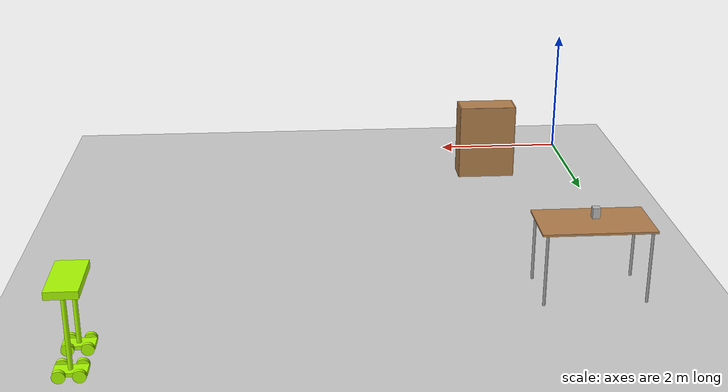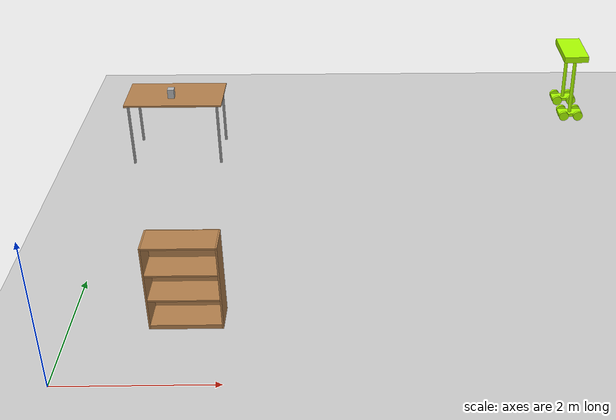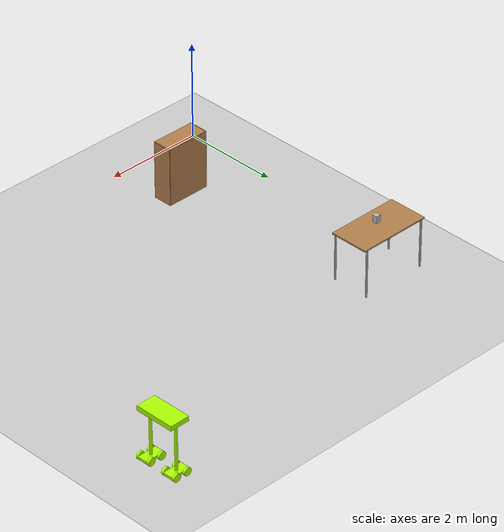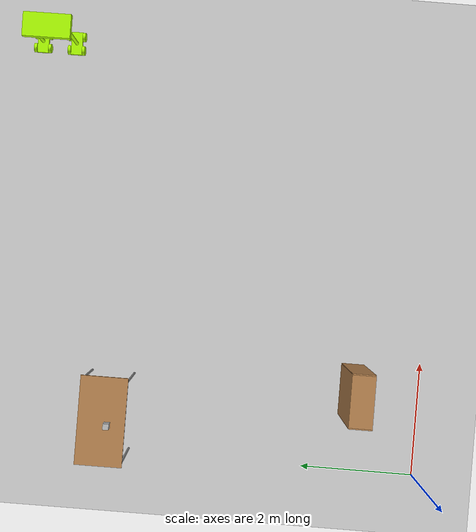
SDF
<sdf version="1.6">
 <world name="default">
  <model name="ground_plane">
   <static>1</static>
   <link name="link">
    <collision name="collision">
     <geometry><plane><normal>0 0 1</normal><size>100 100</size></plane></geometry>
     <surface><friction><ode><mu>100</mu><mu2>50</mu2></ode></friction></surface>
    </collision>
    <visual name="visual">
     <cast_shadows>0</cast_shadows>
     <geometry><plane><normal>0 0 1</normal><size>100 100</size></plane></geometry>
     <material>
      <script><uri>file://media/materials/scripts/gazebo.material</uri><name>Gazebo/Grey</name></script>
     </material>
    </visual>
   </link>
  </model>
  <model name="table_0">
   <static>1</static>
   <link name="link">
    <collision name="surface">
     <pose>0 0 1 0 -0 0</pose>
     <geometry><box><size>1.5 0.8 0.03</size></box></geometry>
     <surface><friction><ode><mu>0.6</mu><mu2>0.6</mu2></ode></friction></surface>
    </collision>
    <visual name="visual1">
     <pose>0 0 1 0 -0 0</pose>
     <geometry><box><size>1.5 0.8 0.03</size></box></geometry>
     <material>
      <script><uri>file://media/materials/scripts/gazebo.material</uri><name>Gazebo/Wood</name></script>
     </material>
    </visual>
    <collision name="front_left_leg">
     <pose>0.68 0.38 0.5 0 -0 0</pose>
     <geometry><cylinder><radius>0.02</radius><length>1</length></cylinder></geometry>
    </collision>
    <visual name="front_left_leg">
     <pose>0.68 0.38 0.5 0 -0 0</pose>
     <geometry><cylinder><radius>0.02</radius><length>1</length></cylinder></geometry>
     <material>
      <script><uri>file://media/materials/scripts/gazebo.material</uri><name>Gazebo/Grey</name></script>
     </material>
    </visual>
    <collision name="front_right_leg">
     <pose>0.68 -0.38 0.5 0 -0 0</pose>
     <geometry><cylinder><radius>0.02</radius><length>1</length></cylinder></geometry>
    </collision>
    <visual name="front_right_leg">
     <pose>0.68 -0.38 0.5 0 -0 0</pose>
     <geometry><cylinder><radius>0.02</radius><length>1</length></cylinder></geometry>
     <material>
      <script><uri>file://media/materials/scripts/gazebo.material</uri><name>Gazebo/Grey</name></script>
     </material>
    </visual>
    <collision name="back_right_leg">
     <pose>-0.68 -0.38 0.5 0 -0 0</pose>
     <geometry><cylinder><radius>0.02</radius><length>1</length></cylinder></geometry>
    </collision>
    <visual name="back_right_leg">
     <pose>-0.68 -0.38 0.5 0 -0 0</pose>
     <geometry><cylinder><radius>0.02</radius><length>1</length></cylinder></geometry>
     <material>
      <script><uri>file://media/materials/scripts/gazebo.material</uri><name>Gazebo/Grey</name></script>
     </material>
    </visual>
    <collision name="back_left_leg">
     <pose>-0.68 0.38 0.5 0 -0 0</pose>
     <geometry><cylinder><radius>0.02</radius><length>1</length></cylinder></geometry>
    </collision>
    <visual name="back_left_leg">
     <pose>-0.68 0.38 0.5 0 -0 0</pose>
     <geometry><cylinder><radius>0.02</radius><length>1</length></cylinder></geometry>
     <material>
      <script><uri>file://media/materials/scripts/gazebo.material</uri><name>Gazebo/Grey</name></script>
     </material>
    </visual>
   </link>
   <pose>0.75 5.5 0 0 -0 0</pose>
  </model>
  <model name="bookshelf_0">
   <static>1</static>
   <link name="link">
    <inertial><mass>1</mass></inertial>
    <collision name="back">
     <pose>0 0.005 0.6 0 -0 0</pose>
     <geometry><box><size>0.9 0.01 1.2</size></box></geometry>
    </collision>
    <visual name="visual1">
     <pose>0 0.005 0.6 0 -0 0</pose>
     <geometry><box><size>0.9 0.01 1.2</size></box></geometry>
     <material>
      <script><uri>file://media/materials/scripts/gazebo.material</uri><name>Gazebo/Wood</name></script>
     </material>
    </visual>
    <collision name="left_side">
     <pose>0.45 -0.195 0.6 0 -0 0</pose>
     <geometry><box><size>0.02 0.4 1.2</size></box></geometry>
    </collision>
    <visual name="visual2">
     <pose>0.45 -0.195 0.6 0 -0 0</pose>
     <geometry><box><size>0.02 0.4 1.2</size></box></geometry>
     <material>
      <script><uri>file://media/materials/scripts/gazebo.material</uri><name>Gazebo/Wood</name></script>
     </material>
    </visual>
    <collision name="right_side">
     <pose>-0.45 -0.195 0.6 0 -0 0</pose>
     <geometry><box><size>0.02 0.4 1.2</size></box></geometry>
    </collision>
    <visual name="visual3">
     <pose>-0.45 -0.195 0.6 0 -0 0</pose>
     <geometry><box><size>0.02 0.4 1.2</size></box></geometry>
     <material>
      <script><uri>file://media/materials/scripts/gazebo.material</uri><name>Gazebo/Wood</name></script>
     </material>
    </visual>
    <collision name="bottom">
     <pose>0 -0.195 0.03 0 -0 0</pose>
     <geometry><box><size>0.88 0.4 0.06</size></box></geometry>
    </collision>
    <visual name="visual4">
     <pose>0 -0.195 0.03 0 -0 0</pose>
     <geometry><box><size>0.88 0.4 0.06</size></box></geometry>
     <material>
      <script><uri>file://media/materials/scripts/gazebo.material</uri><name>Gazebo/Wood</name></script>
     </material>
    </visual>
    <collision name="top">
     <pose>0 -0.195 1.19 0 -0 0</pose>
     <geometry><box><size>0.88 0.4 0.02</size></box></geometry>
    </collision>
    <visual name="visual5">
     <pose>0 -0.195 1.19 0 -0 0</pose>
     <geometry><box><size>0.88 0.4 0.02</size></box></geometry>
     <material>
      <script><uri>file://media/materials/scripts/gazebo.material</uri><name>Gazebo/Wood</name></script>
     </material>
    </visual>
    <collision name="low_shelf">
     <pose>0 -0.195 0.43 0 -0 0</pose>
     <geometry><box><size>0.88 0.4 0.02</size></box></geometry>
    </collision>
    <visual name="visual6">
     <pose>0 -0.195 0.43 0 -0 0</pose>
     <geometry><box><size>0.88 0.4 0.02</size></box></geometry>
     <material>
      <script><uri>file://media/materials/scripts/gazebo.material</uri><name>Gazebo/Wood</name></script>
     </material>
    </visual>
    <collision name="high_shelf">
     <pose>0 -0.195 0.8 0 -0 0</pose>
     <geometry><box><size>0.88 0.4 0.02</size></box></geometry>
    </collision>
    <visual name="visual7">
     <pose>0 -0.195 0.8 0 -0 0</pose>
     <geometry><box><size>0.88 0.4 0.02</size></box></geometry>
     <material>
      <script><uri>file://media/materials/scripts/gazebo.material</uri><name>Gazebo/Wood</name></script>
     </material>
    </visual>
   </link>
   <pose>1.45 1.4 0 0 -0 0</pose>
  </model>
  <model name="tea_box">
   <link name="link">
    <pose>0 0 0.075 0 -0 0</pose>
    <visual name="visual">
     <geometry><box><size>0.1 0.1 0.15</size></box></geometry>
     <material>
      <script>
       <uri>file://model/3DGEMS/kitchen/tea_box/materials/scripts</uri>
       <uri>file://model/3DGEMS/kitchen/tea_box/materials/textures</uri>
       <name>tea_pat</name>
      </script>
     </material>
    </visual>
    <collision name="collision"><geometry><box><size>0.1 0.1 0.15</size></box></geometry></collision>
   </link>
   <static>1</static>
   <pose>0.7 5.4 1.01 0 -0 0</pose>
  </model>
  <model name="myRobot_1">
   <link name="link_0">
    <pose>0 -0.3 -0.151923 0 -0 0</pose>
    <inertial>
     <mass>1</mass>
     <inertia>
      <ixx>0.166667</ixx>
      <ixy>0</ixy>
      <ixz>0</ixz>
      <iyy>0.166667</iyy>
      <iyz>0</iyz>
      <izz>0.166667</izz>
     </inertia>
    </inertial>
    <visual name="visual">
     <geometry><box><size>0.4 0.2 0.05</size></box></geometry>
     <material>
      <lighting>1</lighting>
      <script><uri>file://media/materials/scripts/gazebo.material</uri><name>Gazebo/Grey</name></script>
      <ambient>0.675 1 0 1</ambient>
      <diffuse>0.675 1 0 1</diffuse>
      <specular>0.01 0.01 0.01 1</specular>
      <emissive>0 0 0 1</emissive>
      <shader type="vertex"><normal_map>__default__</normal_map></shader>
     </material>
    </visual>
    <collision name="collision">
     <geometry><box><size>0.4 0.2 0.05</size></box></geometry>
     <surface>
      <friction>
       <ode><mu>1</mu><mu2>1</mu2><fdir1>0 0 0</fdir1><slip1>0</slip1><slip2>0</slip2></ode>
       <torsional>
        <coefficient>1</coefficient>
        <patch_radius>0</patch_radius>
        <surface_radius>0</surface_radius>
        <use_patch_radius>1</use_patch_radius>
        <ode><slip>0</slip></ode>
       </torsional>
      </friction>
      <bounce><restitution_coefficient>0</restitution_coefficient><threshold>1e+06</threshold></bounce>
      <contact>
       <collide_without_contact>0</collide_without_contact>
       <collide_without_contact_bitmask>1</collide_without_contact_bitmask>
       <collide_bitmask>1</collide_bitmask>
       <ode>
        <soft_cfm>0</soft_cfm>
        <soft_erp>0.2</soft_erp>
        <kp>1e+13</kp>
        <kd>1</kd>
        <max_vel>0.01</max_vel>
        <min_depth>0</min_depth>
       </ode>
       <bullet>
        <split_impulse>1</split_impulse>
        <split_impulse_penetration_threshold>-0.01</split_impulse_penetration_threshold>
        <soft_cfm>0</soft_cfm>
        <soft_erp>0.2</soft_erp>
        <kp>1e+13</kp>
        <kd>1</kd>
       </bullet>
      </contact>
     </surface>
    </collision>
   </link>
   <link name="link_0_clone">
    <pose>0 0.3 -0.151923 0 -0 0</pose>
    <inertial>
     <mass>1</mass>
     <inertia>
      <ixx>0.166667</ixx>
      <ixy>0</ixy>
      <ixz>0</ixz>
      <iyy>0.166667</iyy>
      <iyz>0</iyz>
      <izz>0.166667</izz>
     </inertia>
    </inertial>
    <visual name="visual">
     <geometry><box><size>0.4 0.2 0.05</size></box></geometry>
     <material>
      <lighting>1</lighting>
      <script><uri>file://media/materials/scripts/gazebo.material</uri><name>Gazebo/Grey</name></script>
      <ambient>0.675 1 0 1</ambient>
      <diffuse>0.675 1 0 1</diffuse>
      <specular>0.01 0.01 0.01 1</specular>
      <emissive>0 0 0 1</emissive>
      <shader type="vertex"><normal_map>__default__</normal_map></shader>
     </material>
    </visual>
    <collision name="collision">
     <geometry><box><size>0.4 0.2 0.05</size></box></geometry>
     <surface>
      <friction>
       <ode><mu>1</mu><mu2>1</mu2><fdir1>0 0 0</fdir1><slip1>0</slip1><slip2>0</slip2></ode>
       <torsional>
        <coefficient>1</coefficient>
        <patch_radius>0</patch_radius>
        <surface_radius>0</surface_radius>
        <use_patch_radius>1</use_patch_radius>
        <ode><slip>0</slip></ode>
       </torsional>
      </friction>
      <bounce><restitution_coefficient>0</restitution_coefficient><threshold>1e+06</threshold></bounce>
      <contact>
       <collide_without_contact>0</collide_without_contact>
       <collide_without_contact_bitmask>1</collide_without_contact_bitmask>
       <collide_bitmask>1</collide_bitmask>
       <ode>
        <soft_cfm>0</soft_cfm>
        <soft_erp>0.2</soft_erp>
        <kp>1e+13</kp>
        <kd>1</kd>
        <max_vel>0.01</max_vel>
        <min_depth>0</min_depth>
       </ode>
       <bullet>
        <split_impulse>1</split_impulse>
        <split_impulse_penetration_threshold>-0.01</split_impulse_penetration_threshold>
        <soft_cfm>0</soft_cfm>
        <soft_erp>0.2</soft_erp>
        <kp>1e+13</kp>
        <kd>1</kd>
       </bullet>
      </contact>
     </surface>
    </collision>
   </link>
   <link name="link_1">
    <pose>0 -0.3 0.323077 0 -0 0</pose>
    <inertial>
     <mass>1</mass>
     <inertia><ixx>0.145833</ixx><ixy>0</ixy><ixz>0</ixz><iyy>0.145833</iyy><iyz>0</iyz><izz>0.125</izz></inertia>
    </inertial>
    <visual name="visual">
     <geometry><cylinder><radius>0.03</radius><length>1</length></cylinder></geometry>
     <material>
      <lighting>1</lighting>
      <script><uri>file://media/materials/scripts/gazebo.material</uri><name>Gazebo/Grey</name></script>
      <ambient>0.675 1 0 1</ambient>
      <diffuse>0.675 1 0 1</diffuse>
      <specular>0.01 0.01 0.01 1</specular>
      <emissive>0 0 0 1</emissive>
      <shader type="vertex"><normal_map>__default__</normal_map></shader>
     </material>
    </visual>
    <collision name="collision">
     <geometry><cylinder><radius>0.03</radius><length>1</length></cylinder></geometry>
     <surface>
      <friction>
       <ode><mu>1</mu><mu2>1</mu2><fdir1>0 0 0</fdir1><slip1>0</slip1><slip2>0</slip2></ode>
       <torsional>
        <coefficient>1</coefficient>
        <patch_radius>0</patch_radius>
        <surface_radius>0</surface_radius>
        <use_patch_radius>1</use_patch_radius>
        <ode><slip>0</slip></ode>
       </torsional>
      </friction>
      <bounce><restitution_coefficient>0</restitution_coefficient><threshold>1e+06</threshold></bounce>
      <contact>
       <collide_without_contact>0</collide_without_contact>
       <collide_without_contact_bitmask>1</collide_without_contact_bitmask>
       <collide_bitmask>1</collide_bitmask>
       <ode>
        <soft_cfm>0</soft_cfm>
        <soft_erp>0.2</soft_erp>
        <kp>1e+13</kp>
        <kd>1</kd>
        <max_vel>0.01</max_vel>
        <min_depth>0</min_depth>
       </ode>
       <bullet>
        <split_impulse>1</split_impulse>
        <split_impulse_penetration_threshold>-0.01</split_impulse_penetration_threshold>
        <soft_cfm>0</soft_cfm>
        <soft_erp>0.2</soft_erp>
        <kp>1e+13</kp>
        <kd>1</kd>
       </bullet>
      </contact>
     </surface>
    </collision>
   </link>
   <link name="link_1_clone">
    <pose>0 0.3 0.323077 0 -0 0</pose>
    <inertial>
     <mass>1</mass>
     <inertia><ixx>0.145833</ixx><ixy>0</ixy><ixz>0</ixz><iyy>0.145833</iyy><iyz>0</iyz><izz>0.125</izz></inertia>
    </inertial>
    <visual name="visual">
     <geometry><cylinder><radius>0.03</radius><length>1</length></cylinder></geometry>
     <material>
      <lighting>1</lighting>
      <script><uri>file://media/materials/scripts/gazebo.material</uri><name>Gazebo/Grey</name></script>
      <ambient>0.675 1 0 1</ambient>
      <diffuse>0.675 1 0 1</diffuse>
      <specular>0.01 0.01 0.01 1</specular>
      <emissive>0 0 0 1</emissive>
      <shader type="vertex"><normal_map>__default__</normal_map></shader>
     </material>
    </visual>
    <collision name="collision">
     <geometry><cylinder><radius>0.03</radius><length>1</length></cylinder></geometry>
     <surface>
      <friction>
       <ode><mu>1</mu><mu2>1</mu2><fdir1>0 0 0</fdir1><slip1>0</slip1><slip2>0</slip2></ode>
       <torsional>
        <coefficient>1</coefficient>
        <patch_radius>0</patch_radius>
        <surface_radius>0</surface_radius>
        <use_patch_radius>1</use_patch_radius>
        <ode><slip>0</slip></ode>
       </torsional>
      </friction>
      <bounce><restitution_coefficient>0</restitution_coefficient><threshold>1e+06</threshold></bounce>
      <contact>
       <collide_without_contact>0</collide_without_contact>
       <collide_without_contact_bitmask>1</collide_without_contact_bitmask>
       <collide_bitmask>1</collide_bitmask>
       <ode>
        <soft_cfm>0</soft_cfm>
        <soft_erp>0.2</soft_erp>
        <kp>1e+13</kp>
        <kd>1</kd>
        <max_vel>0.01</max_vel>
        <min_depth>0</min_depth>
       </ode>
       <bullet>
        <split_impulse>1</split_impulse>
        <split_impulse_penetration_threshold>-0.01</split_impulse_penetration_threshold>
        <soft_cfm>0</soft_cfm>
        <soft_erp>0.2</soft_erp>
        <kp>1e+13</kp>
        <kd>1</kd>
       </bullet>
      </contact>
     </surface>
    </collision>
   </link>
   <link name="link_2">
    <pose>0 -0 0.873077 0 -0 0</pose>
    <inertial>
     <mass>1</mass>
     <inertia>
      <ixx>0.166667</ixx>
      <ixy>0</ixy>
      <ixz>0</ixz>
      <iyy>0.166667</iyy>
      <iyz>0</iyz>
      <izz>0.166667</izz>
     </inertia>
    </inertial>
    <visual name="visual">
     <geometry><box><size>0.4 0.8 0.1</size></box></geometry>
     <material>
      <lighting>1</lighting>
      <script><uri>file://media/materials/scripts/gazebo.material</uri><name>Gazebo/Grey</name></script>
      <ambient>0.675 1 0 1</ambient>
      <diffuse>0.675 1 0 1</diffuse>
      <specular>0.01 0.01 0.01 1</specular>
      <emissive>0 0 0 1</emissive>
      <shader type="vertex"><normal_map>__default__</normal_map></shader>
     </material>
    </visual>
    <collision name="collision">
     <geometry><box><size>0.4 0.8 0.1</size></box></geometry>
     <surface>
      <friction>
       <ode><mu>1</mu><mu2>1</mu2><fdir1>0 0 0</fdir1><slip1>0</slip1><slip2>0</slip2></ode>
       <torsional>
        <coefficient>1</coefficient>
        <patch_radius>0</patch_radius>
        <surface_radius>0</surface_radius>
        <use_patch_radius>1</use_patch_radius>
        <ode><slip>0</slip></ode>
       </torsional>
      </friction>
      <bounce><restitution_coefficient>0</restitution_coefficient><threshold>1e+06</threshold></bounce>
      <contact>
       <collide_without_contact>0</collide_without_contact>
       <collide_without_contact_bitmask>1</collide_without_contact_bitmask>
       <collide_bitmask>1</collide_bitmask>
       <ode>
        <soft_cfm>0</soft_cfm>
        <soft_erp>0.2</soft_erp>
        <kp>1e+13</kp>
        <kd>1</kd>
        <max_vel>0.01</max_vel>
        <min_depth>0</min_depth>
       </ode>
       <bullet>
        <split_impulse>1</split_impulse>
        <split_impulse_penetration_threshold>-0.01</split_impulse_penetration_threshold>
        <soft_cfm>0</soft_cfm>
        <soft_erp>0.2</soft_erp>
        <kp>1e+13</kp>
        <kd>1</kd>
       </bullet>
      </contact>
     </surface>
    </collision>
   </link>
   <link name="link_3">
    <pose>-0.12 -0.425 -0.151923 1.5707 -0 0</pose>
    <inertial>
     <mass>1</mass>
     <inertia><ixx>0.145833</ixx><ixy>0</ixy><ixz>0</ixz><iyy>0.145833</iyy><iyz>0</iyz><izz>0.125</izz></inertia>
    </inertial>
    <visual name="visual">
     <geometry><cylinder><radius>0.08</radius><length>0.05</length></cylinder></geometry>
     <material>
      <lighting>1</lighting>
      <script><uri>file://media/materials/scripts/gazebo.material</uri><name>Gazebo/Grey</name></script>
      <ambient>0.675 1 0 1</ambient>
      <diffuse>0.675 1 0 1</diffuse>
      <specular>0.01 0.01 0.01 1</specular>
      <emissive>0 0 0 1</emissive>
      <shader type="vertex"><normal_map>__default__</normal_map></shader>
     </material>
    </visual>
    <collision name="collision">
     <geometry><cylinder><radius>0.08</radius><length>0.05</length></cylinder></geometry>
     <surface>
      <friction>
       <ode><mu>1</mu><mu2>1</mu2><fdir1>0 0 0</fdir1><slip1>0</slip1><slip2>0</slip2></ode>
       <torsional>
        <coefficient>1</coefficient>
        <patch_radius>0</patch_radius>
        <surface_radius>0</surface_radius>
        <use_patch_radius>1</use_patch_radius>
        <ode><slip>0</slip></ode>
       </torsional>
      </friction>
      <bounce><restitution_coefficient>0</restitution_coefficient><threshold>1e+06</threshold></bounce>
      <contact>
       <collide_without_contact>0</collide_without_contact>
       <collide_without_contact_bitmask>1</collide_without_contact_bitmask>
       <collide_bitmask>1</collide_bitmask>
       <ode>
        <soft_cfm>0</soft_cfm>
        <soft_erp>0.2</soft_erp>
        <kp>1e+13</kp>
        <kd>1</kd>
        <max_vel>0.01</max_vel>
        <min_depth>0</min_depth>
       </ode>
       <bullet>
        <split_impulse>1</split_impulse>
        <split_impulse_penetration_threshold>-0.01</split_impulse_penetration_threshold>
        <soft_cfm>0</soft_cfm>
        <soft_erp>0.2</soft_erp>
        <kp>1e+13</kp>
        <kd>1</kd>
       </bullet>
      </contact>
     </surface>
    </collision>
   </link>
   <link name="link_3_clone">
    <pose>0.12 -0.425 -0.151923 1.5707 -0 0</pose>
    <inertial>
     <mass>1</mass>
     <inertia><ixx>0.145833</ixx><ixy>0</ixy><ixz>0</ixz><iyy>0.145833</iyy><iyz>0</iyz><izz>0.125</izz></inertia>
    </inertial>
    <visual name="visual">
     <geometry><cylinder><radius>0.08</radius><length>0.05</length></cylinder></geometry>
     <material>
      <lighting>1</lighting>
      <script><uri>file://media/materials/scripts/gazebo.material</uri><name>Gazebo/Grey</name></script>
      <ambient>0.675 1 0 1</ambient>
      <diffuse>0.675 1 0 1</diffuse>
      <specular>0.01 0.01 0.01 1</specular>
      <emissive>0 0 0 1</emissive>
      <shader type="vertex"><normal_map>__default__</normal_map></shader>
     </material>
    </visual>
    <collision name="collision">
     <geometry><cylinder><radius>0.08</radius><length>0.05</length></cylinder></geometry>
     <surface>
      <friction>
       <ode><mu>1</mu><mu2>1</mu2><fdir1>0 0 0</fdir1><slip1>0</slip1><slip2>0</slip2></ode>
       <torsional>
        <coefficient>1</coefficient>
        <patch_radius>0</patch_radius>
        <surface_radius>0</surface_radius>
        <use_patch_radius>1</use_patch_radius>
        <ode><slip>0</slip></ode>
       </torsional>
      </friction>
      <bounce><restitution_coefficient>0</restitution_coefficient><threshold>1e+06</threshold></bounce>
      <contact>
       <collide_without_contact>0</collide_without_contact>
       <collide_without_contact_bitmask>1</collide_without_contact_bitmask>
       <collide_bitmask>1</collide_bitmask>
       <ode>
        <soft_cfm>0</soft_cfm>
        <soft_erp>0.2</soft_erp>
        <kp>1e+13</kp>
        <kd>1</kd>
        <max_vel>0.01</max_vel>
        <min_depth>0</min_depth>
       </ode>
       <bullet>
        <split_impulse>1</split_impulse>
        <split_impulse_penetration_threshold>-0.01</split_impulse_penetration_threshold>
        <soft_cfm>0</soft_cfm>
        <soft_erp>0.2</soft_erp>
        <kp>1e+13</kp>
        <kd>1</kd>
       </bullet>
      </contact>
     </surface>
    </collision>
   </link>
   <link name="link_3_clone_0">
    <pose>-0.12 -0.175 -0.151923 1.5707 -0 0</pose>
    <inertial>
     <mass>1</mass>
     <inertia><ixx>0.145833</ixx><ixy>0</ixy><ixz>0</ixz><iyy>0.145833</iyy><iyz>0</iyz><izz>0.125</izz></inertia>
    </inertial>
    <visual name="visual">
     <geometry><cylinder><radius>0.08</radius><length>0.05</length></cylinder></geometry>
     <material>
      <lighting>1</lighting>
      <script><uri>file://media/materials/scripts/gazebo.material</uri><name>Gazebo/Grey</name></script>
      <ambient>0.675 1 0 1</ambient>
      <diffuse>0.675 1 0 1</diffuse>
      <specular>0.01 0.01 0.01 1</specular>
      <emissive>0 0 0 1</emissive>
      <shader type="vertex"><normal_map>__default__</normal_map></shader>
     </material>
    </visual>
    <collision name="collision">
     <geometry><cylinder><radius>0.08</radius><length>0.05</length></cylinder></geometry>
     <surface>
      <friction>
       <ode><mu>1</mu><mu2>1</mu2><fdir1>0 0 0</fdir1><slip1>0</slip1><slip2>0</slip2></ode>
       <torsional>
        <coefficient>1</coefficient>
        <patch_radius>0</patch_radius>
        <surface_radius>0</surface_radius>
        <use_patch_radius>1</use_patch_radius>
        <ode><slip>0</slip></ode>
       </torsional>
      </friction>
      <bounce><restitution_coefficient>0</restitution_coefficient><threshold>1e+06</threshold></bounce>
      <contact>
       <collide_without_contact>0</collide_without_contact>
       <collide_without_contact_bitmask>1</collide_without_contact_bitmask>
       <collide_bitmask>1</collide_bitmask>
       <ode>
        <soft_cfm>0</soft_cfm>
        <soft_erp>0.2</soft_erp>
        <kp>1e+13</kp>
        <kd>1</kd>
        <max_vel>0.01</max_vel>
        <min_depth>0</min_depth>
       </ode>
       <bullet>
        <split_impulse>1</split_impulse>
        <split_impulse_penetration_threshold>-0.01</split_impulse_penetration_threshold>
        <soft_cfm>0</soft_cfm>
        <soft_erp>0.2</soft_erp>
        <kp>1e+13</kp>
        <kd>1</kd>
       </bullet>
      </contact>
     </surface>
    </collision>
   </link>
   <link name="link_3_clone_1">
    <pose>0.12 -0.175 -0.151923 1.5707 -0 0</pose>
    <inertial>
     <mass>1</mass>
     <inertia><ixx>0.145833</ixx><ixy>0</ixy><ixz>0</ixz><iyy>0.145833</iyy><iyz>0</iyz><izz>0.125</izz></inertia>
    </inertial>
    <visual name="visual">
     <geometry><cylinder><radius>0.08</radius><length>0.05</length></cylinder></geometry>
     <material>
      <lighting>1</lighting>
      <script><uri>file://media/materials/scripts/gazebo.material</uri><name>Gazebo/Grey</name></script>
      <ambient>0.675 1 0 1</ambient>
      <diffuse>0.675 1 0 1</diffuse>
      <specular>0.01 0.01 0.01 1</specular>
      <emissive>0 0 0 1</emissive>
      <shader type="vertex"><normal_map>__default__</normal_map></shader>
     </material>
    </visual>
    <collision name="collision">
     <geometry><cylinder><radius>0.08</radius><length>0.05</length></cylinder></geometry>
     <surface>
      <friction>
       <ode><mu>1</mu><mu2>1</mu2><fdir1>0 0 0</fdir1><slip1>0</slip1><slip2>0</slip2></ode>
       <torsional>
        <coefficient>1</coefficient>
        <patch_radius>0</patch_radius>
        <surface_radius>0</surface_radius>
        <use_patch_radius>1</use_patch_radius>
        <ode><slip>0</slip></ode>
       </torsional>
      </friction>
      <bounce><restitution_coefficient>0</restitution_coefficient><threshold>1e+06</threshold></bounce>
      <contact>
       <collide_without_contact>0</collide_without_contact>
       <collide_without_contact_bitmask>1</collide_without_contact_bitmask>
       <collide_bitmask>1</collide_bitmask>
       <ode>
        <soft_cfm>0</soft_cfm>
        <soft_erp>0.2</soft_erp>
        <kp>1e+13</kp>
        <kd>1</kd>
        <max_vel>0.01</max_vel>
        <min_depth>0</min_depth>
       </ode>
       <bullet>
        <split_impulse>1</split_impulse>
        <split_impulse_penetration_threshold>-0.01</split_impulse_penetration_threshold>
        <soft_cfm>0</soft_cfm>
        <soft_erp>0.2</soft_erp>
        <kp>1e+13</kp>
        <kd>1</kd>
       </bullet>
      </contact>
     </surface>
    </collision>
   </link>
   <link name="link_3_clone_2">
    <pose>-0.12 0.175 -0.151923 1.5707 -0 0</pose>
    <inertial>
     <mass>1</mass>
     <inertia><ixx>0.145833</ixx><ixy>0</ixy><ixz>0</ixz><iyy>0.145833</iyy><iyz>0</iyz><izz>0.125</izz></inertia>
    </inertial>
    <visual name="visual">
     <geometry><cylinder><radius>0.08</radius><length>0.05</length></cylinder></geometry>
     <material>
      <lighting>1</lighting>
      <script><uri>file://media/materials/scripts/gazebo.material</uri><name>Gazebo/Grey</name></script>
      <ambient>0.675 1 0 1</ambient>
      <diffuse>0.675 1 0 1</diffuse>
      <specular>0.01 0.01 0.01 1</specular>
      <emissive>0 0 0 1</emissive>
      <shader type="vertex"><normal_map>__default__</normal_map></shader>
     </material>
    </visual>
    <collision name="collision">
     <geometry><cylinder><radius>0.08</radius><length>0.05</length></cylinder></geometry>
     <surface>
      <friction>
       <ode><mu>1</mu><mu2>1</mu2><fdir1>0 0 0</fdir1><slip1>0</slip1><slip2>0</slip2></ode>
       <torsional>
        <coefficient>1</coefficient>
        <patch_radius>0</patch_radius>
        <surface_radius>0</surface_radius>
        <use_patch_radius>1</use_patch_radius>
        <ode><slip>0</slip></ode>
       </torsional>
      </friction>
      <bounce><restitution_coefficient>0</restitution_coefficient><threshold>1e+06</threshold></bounce>
      <contact>
       <collide_without_contact>0</collide_without_contact>
       <collide_without_contact_bitmask>1</collide_without_contact_bitmask>
       <collide_bitmask>1</collide_bitmask>
       <ode>
        <soft_cfm>0</soft_cfm>
        <soft_erp>0.2</soft_erp>
        <kp>1e+13</kp>
        <kd>1</kd>
        <max_vel>0.01</max_vel>
        <min_depth>0</min_depth>
       </ode>
       <bullet>
        <split_impulse>1</split_impulse>
        <split_impulse_penetration_threshold>-0.01</split_impulse_penetration_threshold>
        <soft_cfm>0</soft_cfm>
        <soft_erp>0.2</soft_erp>
        <kp>1e+13</kp>
        <kd>1</kd>
       </bullet>
      </contact>
     </surface>
    </collision>
   </link>
   <link name="link_3_clone_3">
    <pose>0.12 0.175 -0.151923 1.5707 -0 0</pose>
    <inertial>
     <mass>1</mass>
     <inertia><ixx>0.145833</ixx><ixy>0</ixy><ixz>0</ixz><iyy>0.145833</iyy><iyz>0</iyz><izz>0.125</izz></inertia>
    </inertial>
    <visual name="visual">
     <geometry><cylinder><radius>0.08</radius><length>0.05</length></cylinder></geometry>
     <material>
      <lighting>1</lighting>
      <script><uri>file://media/materials/scripts/gazebo.material</uri><name>Gazebo/Grey</name></script>
      <ambient>0.675 1 0 1</ambient>
      <diffuse>0.675 1 0 1</diffuse>
      <specular>0.01 0.01 0.01 1</specular>
      <emissive>0 0 0 1</emissive>
      <shader type="vertex"><normal_map>__default__</normal_map></shader>
     </material>
    </visual>
    <collision name="collision">
     <geometry><cylinder><radius>0.08</radius><length>0.05</length></cylinder></geometry>
     <surface>
      <friction>
       <ode><mu>1</mu><mu2>1</mu2><fdir1>0 0 0</fdir1><slip1>0</slip1><slip2>0</slip2></ode>
       <torsional>
        <coefficient>1</coefficient>
        <patch_radius>0</patch_radius>
        <surface_radius>0</surface_radius>
        <use_patch_radius>1</use_patch_radius>
        <ode><slip>0</slip></ode>
       </torsional>
      </friction>
      <bounce><restitution_coefficient>0</restitution_coefficient><threshold>1e+06</threshold></bounce>
      <contact>
       <collide_without_contact>0</collide_without_contact>
       <collide_without_contact_bitmask>1</collide_without_contact_bitmask>
       <collide_bitmask>1</collide_bitmask>
       <ode>
        <soft_cfm>0</soft_cfm>
        <soft_erp>0.2</soft_erp>
        <kp>1e+13</kp>
        <kd>1</kd>
        <max_vel>0.01</max_vel>
        <min_depth>0</min_depth>
       </ode>
       <bullet>
        <split_impulse>1</split_impulse>
        <split_impulse_penetration_threshold>-0.01</split_impulse_penetration_threshold>
        <soft_cfm>0</soft_cfm>
        <soft_erp>0.2</soft_erp>
        <kp>1e+13</kp>
        <kd>1</kd>
       </bullet>
      </contact>
     </surface>
    </collision>
   </link>
   <link name="link_3_clone_4">
    <pose>-0.12 0.425 -0.151923 1.5707 -0 0</pose>
    <inertial>
     <mass>1</mass>
     <inertia><ixx>0.145833</ixx><ixy>0</ixy><ixz>0</ixz><iyy>0.145833</iyy><iyz>0</iyz><izz>0.125</izz></inertia>
    </inertial>
    <visual name="visual">
     <geometry><cylinder><radius>0.08</radius><length>0.05</length></cylinder></geometry>
     <material>
      <lighting>1</lighting>
      <script><uri>file://media/materials/scripts/gazebo.material</uri><name>Gazebo/Grey</name></script>
      <ambient>0.675 1 0 1</ambient>
      <diffuse>0.675 1 0 1</diffuse>
      <specular>0.01 0.01 0.01 1</specular>
      <emissive>0 0 0 1</emissive>
      <shader type="vertex"><normal_map>__default__</normal_map></shader>
     </material>
    </visual>
    <collision name="collision">
     <geometry><cylinder><radius>0.08</radius><length>0.05</length></cylinder></geometry>
     <surface>
      <friction>
       <ode><mu>1</mu><mu2>1</mu2><fdir1>0 0 0</fdir1><slip1>0</slip1><slip2>0</slip2></ode>
       <torsional>
        <coefficient>1</coefficient>
        <patch_radius>0</patch_radius>
        <surface_radius>0</surface_radius>
        <use_patch_radius>1</use_patch_radius>
        <ode><slip>0</slip></ode>
       </torsional>
      </friction>
      <bounce><restitution_coefficient>0</restitution_coefficient><threshold>1e+06</threshold></bounce>
      <contact>
       <collide_without_contact>0</collide_without_contact>
       <collide_without_contact_bitmask>1</collide_without_contact_bitmask>
       <collide_bitmask>1</collide_bitmask>
       <ode>
        <soft_cfm>0</soft_cfm>
        <soft_erp>0.2</soft_erp>
        <kp>1e+13</kp>
        <kd>1</kd>
        <max_vel>0.01</max_vel>
        <min_depth>0</min_depth>
       </ode>
       <bullet>
        <split_impulse>1</split_impulse>
        <split_impulse_penetration_threshold>-0.01</split_impulse_penetration_threshold>
        <soft_cfm>0</soft_cfm>
        <soft_erp>0.2</soft_erp>
        <kp>1e+13</kp>
        <kd>1</kd>
       </bullet>
      </contact>
     </surface>
    </collision>
   </link>
   <link name="link_3_clone_5">
    <pose>0.12 0.425 -0.151923 1.5707 -0 0</pose>
    <inertial>
     <mass>1</mass>
     <inertia><ixx>0.145833</ixx><ixy>0</ixy><ixz>0</ixz><iyy>0.145833</iyy><iyz>0</iyz><izz>0.125</izz></inertia>
    </inertial>
    <visual name="visual">
     <geometry><cylinder><radius>0.08</radius><length>0.05</length></cylinder></geometry>
     <material>
      <lighting>1</lighting>
      <script><uri>file://media/materials/scripts/gazebo.material</uri><name>Gazebo/Grey</name></script>
      <ambient>0.675 1 0 1</ambient>
      <diffuse>0.675 1 0 1</diffuse>
      <specular>0.01 0.01 0.01 1</specular>
      <emissive>0 0 0 1</emissive>
      <shader type="vertex"><normal_map>__default__</normal_map></shader>
     </material>
    </visual>
    <collision name="collision">
     <geometry><cylinder><radius>0.08</radius><length>0.05</length></cylinder></geometry>
     <surface>
      <friction>
       <ode><mu>1</mu><mu2>1</mu2><fdir1>0 0 0</fdir1><slip1>0</slip1><slip2>0</slip2></ode>
       <torsional>
        <coefficient>1</coefficient>
        <patch_radius>0</patch_radius>
        <surface_radius>0</surface_radius>
        <use_patch_radius>1</use_patch_radius>
        <ode><slip>0</slip></ode>
       </torsional>
      </friction>
      <bounce><restitution_coefficient>0</restitution_coefficient><threshold>1e+06</threshold></bounce>
      <contact>
       <collide_without_contact>0</collide_without_contact>
       <collide_without_contact_bitmask>1</collide_without_contact_bitmask>
       <collide_bitmask>1</collide_bitmask>
       <ode>
        <soft_cfm>0</soft_cfm>
        <soft_erp>0.2</soft_erp>
        <kp>1e+13</kp>
        <kd>1</kd>
        <max_vel>0.01</max_vel>
        <min_depth>0</min_depth>
       </ode>
       <bullet>
        <split_impulse>1</split_impulse>
        <split_impulse_penetration_threshold>-0.01</split_impulse_penetration_threshold>
        <soft_cfm>0</soft_cfm>
        <soft_erp>0.2</soft_erp>
        <kp>1e+13</kp>
        <kd>1</kd>
       </bullet>
      </contact>
     </surface>
    </collision>
   </link>
   <joint name="link_0_JOINT_0" type="fixed">
    <parent>link_0</parent>
    <child>link_1</child>
    <physics>
     <ode><limit><cfm>0</cfm><erp>0.2</erp></limit><suspension><cfm>0</cfm><erp>0.2</erp></suspension></ode>
    </physics>
   </joint>
   <joint name="link_0_JOINT_4" type="revolute">
    <parent>link_0</parent>
    <child>link_3</child>
    <axis>
     <xyz>0 0 1</xyz>
     <use_parent_model_frame>0</use_parent_model_frame>
     <limit>
      <lower>-1.79769e+308</lower>
      <upper>1.79769e+308</upper>
      <effort>-1</effort>
      <velocity>-1</velocity>
     </limit>
     <dynamics>
      <spring_reference>0</spring_reference>
      <spring_stiffness>0</spring_stiffness>
      <damping>0</damping>
     </dynamics>
    </axis>
    <physics>
     <ode><limit><cfm>0</cfm><erp>0.2</erp></limit><suspension><cfm>0</cfm><erp>0.2</erp></suspension></ode>
    </physics>
   </joint>
   <joint name="link_0_JOINT_5" type="revolute">
    <parent>link_0</parent>
    <child>link_3_clone</child>
    <axis>
     <xyz>0 0 1</xyz>
     <use_parent_model_frame>0</use_parent_model_frame>
     <limit>
      <lower>-1.79769e+308</lower>
      <upper>1.79769e+308</upper>
      <effort>-1</effort>
      <velocity>-1</velocity>
     </limit>
     <dynamics>
      <spring_reference>0</spring_reference>
      <spring_stiffness>0</spring_stiffness>
      <damping>0</damping>
     </dynamics>
    </axis>
    <physics>
     <ode><limit><cfm>0</cfm><erp>0.2</erp></limit><suspension><cfm>0</cfm><erp>0.2</erp></suspension></ode>
    </physics>
   </joint>
   <joint name="link_0_JOINT_6" type="revolute">
    <parent>link_0</parent>
    <child>link_3_clone_0</child>
    <axis>
     <xyz>0 0 1</xyz>
     <use_parent_model_frame>0</use_parent_model_frame>
     <limit>
      <lower>-1.79769e+308</lower>
      <upper>1.79769e+308</upper>
      <effort>-1</effort>
      <velocity>-1</velocity>
     </limit>
     <dynamics>
      <spring_reference>0</spring_reference>
      <spring_stiffness>0</spring_stiffness>
      <damping>0</damping>
     </dynamics>
    </axis>
    <physics>
     <ode><limit><cfm>0</cfm><erp>0.2</erp></limit><suspension><cfm>0</cfm><erp>0.2</erp></suspension></ode>
    </physics>
   </joint>
   <joint name="link_0_JOINT_7" type="revolute">
    <parent>link_0</parent>
    <child>link_3_clone_1</child>
    <axis>
     <xyz>0 0 1</xyz>
     <use_parent_model_frame>0</use_parent_model_frame>
     <limit>
      <lower>-1.79769e+308</lower>
      <upper>1.79769e+308</upper>
      <effort>-1</effort>
      <velocity>-1</velocity>
     </limit>
     <dynamics>
      <spring_reference>0</spring_reference>
      <spring_stiffness>0</spring_stiffness>
      <damping>0</damping>
     </dynamics>
    </axis>
    <physics>
     <ode><limit><cfm>0</cfm><erp>0.2</erp></limit><suspension><cfm>0</cfm><erp>0.2</erp></suspension></ode>
    </physics>
   </joint>
   <joint name="link_0_clone_JOINT_10" type="revolute">
    <parent>link_0_clone</parent>
    <child>link_3_clone_4</child>
    <axis>
     <xyz>0 0 1</xyz>
     <use_parent_model_frame>0</use_parent_model_frame>
     <limit>
      <lower>-1.79769e+308</lower>
      <upper>1.79769e+308</upper>
      <effort>-1</effort>
      <velocity>-1</velocity>
     </limit>
     <dynamics>
      <spring_reference>0</spring_reference>
      <spring_stiffness>0</spring_stiffness>
      <damping>0</damping>
     </dynamics>
    </axis>
    <physics>
     <ode><limit><cfm>0</cfm><erp>0.2</erp></limit><suspension><cfm>0</cfm><erp>0.2</erp></suspension></ode>
    </physics>
   </joint>
   <joint name="link_0_clone_JOINT_11" type="revolute">
    <parent>link_0_clone</parent>
    <child>link_3_clone_5</child>
    <axis>
     <xyz>0 0 1</xyz>
     <use_parent_model_frame>0</use_parent_model_frame>
     <limit>
      <lower>-1.79769e+308</lower>
      <upper>1.79769e+308</upper>
      <effort>-1</effort>
      <velocity>-1</velocity>
     </limit>
     <dynamics>
      <spring_reference>0</spring_reference>
      <spring_stiffness>0</spring_stiffness>
      <damping>0</damping>
     </dynamics>
    </axis>
    <physics>
     <ode><limit><cfm>0</cfm><erp>0.2</erp></limit><suspension><cfm>0</cfm><erp>0.2</erp></suspension></ode>
    </physics>
   </joint>
   <joint name="link_0_clone_JOINT_1" type="fixed">
    <parent>link_0_clone</parent>
    <child>link_1_clone</child>
    <physics>
     <ode><limit><cfm>0</cfm><erp>0.2</erp></limit><suspension><cfm>0</cfm><erp>0.2</erp></suspension></ode>
    </physics>
   </joint>
   <joint name="link_0_clone_JOINT_8" type="revolute">
    <parent>link_0_clone</parent>
    <child>link_3_clone_2</child>
    <axis>
     <xyz>0 0 1</xyz>
     <use_parent_model_frame>0</use_parent_model_frame>
     <limit>
      <lower>-1.79769e+308</lower>
      <upper>1.79769e+308</upper>
      <effort>-1</effort>
      <velocity>-1</velocity>
     </limit>
     <dynamics>
      <spring_reference>0</spring_reference>
      <spring_stiffness>0</spring_stiffness>
      <damping>0</damping>
     </dynamics>
    </axis>
    <physics>
     <ode><limit><cfm>0</cfm><erp>0.2</erp></limit><suspension><cfm>0</cfm><erp>0.2</erp></suspension></ode>
    </physics>
   </joint>
   <joint name="link_0_clone_JOINT_9" type="revolute">
    <parent>link_0_clone</parent>
    <child>link_3_clone_3</child>
    <axis>
     <xyz>0 0 1</xyz>
     <use_parent_model_frame>0</use_parent_model_frame>
     <limit>
      <lower>-1.79769e+308</lower>
      <upper>1.79769e+308</upper>
      <effort>-1</effort>
      <velocity>-1</velocity>
     </limit>
     <dynamics>
      <spring_reference>0</spring_reference>
      <spring_stiffness>0</spring_stiffness>
      <damping>0</damping>
     </dynamics>
    </axis>
    <physics>
     <ode><limit><cfm>0</cfm><erp>0.2</erp></limit><suspension><cfm>0</cfm><erp>0.2</erp></suspension></ode>
    </physics>
   </joint>
   <joint name="link_1_JOINT_2" type="fixed">
    <parent>link_1</parent>
    <child>link_2</child>
    <physics>
     <ode><limit><cfm>0</cfm><erp>0.2</erp></limit><suspension><cfm>0</cfm><erp>0.2</erp></suspension></ode>
    </physics>
   </joint>
   <joint name="link_1_clone_JOINT_3" type="fixed">
    <parent>link_1_clone</parent>
    <child>link_2</child>
    <physics>
     <ode><limit><cfm>0</cfm><erp>0.2</erp></limit><suspension><cfm>0</cfm><erp>0.2</erp></suspension></ode>
    </physics>
   </joint>
   <static>0</static>
   <pose>7.24966 6.89989 0.231926 0 -3e-06 0.009376</pose>
  </model>
 </world>
</sdf>
